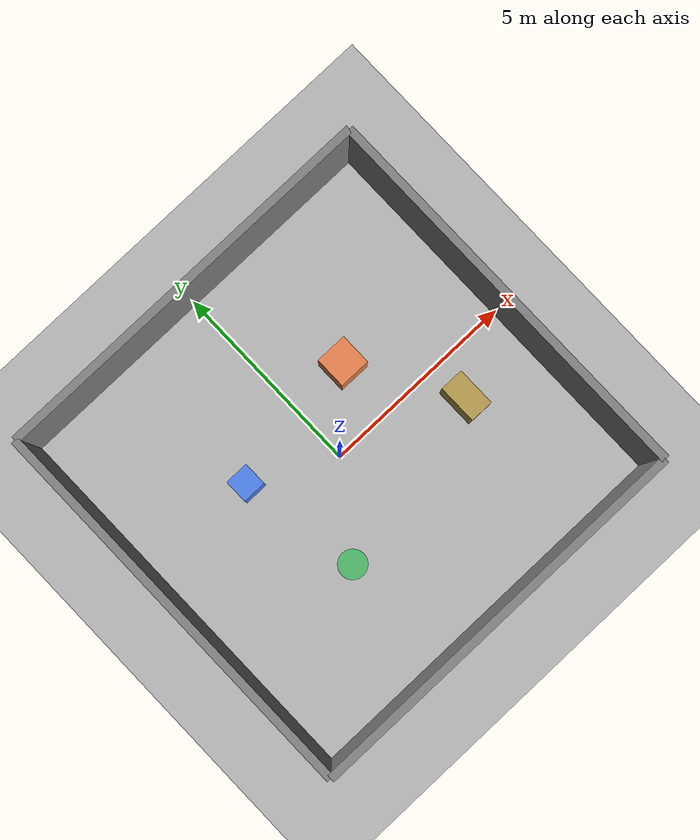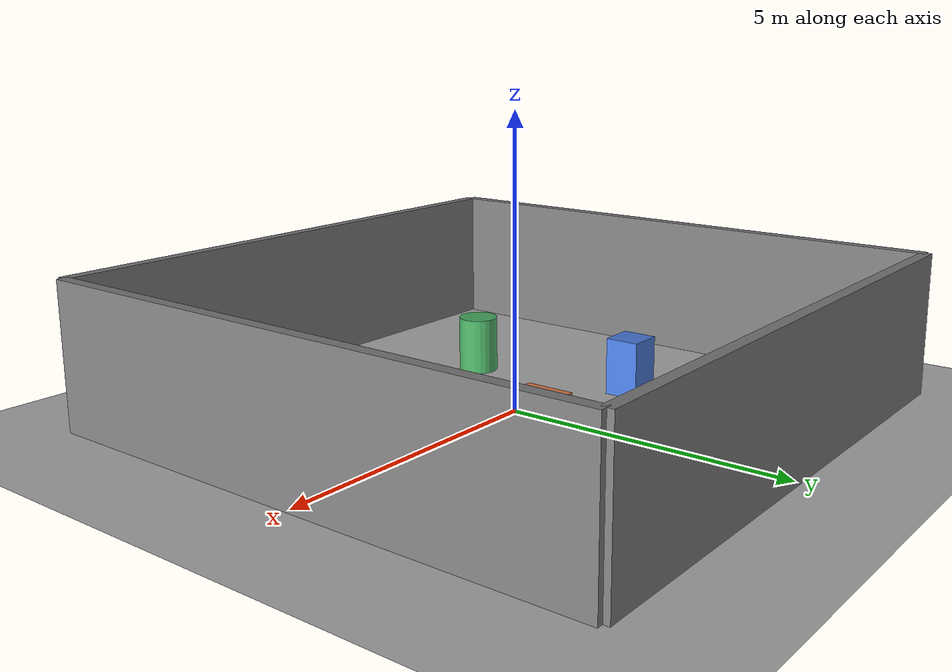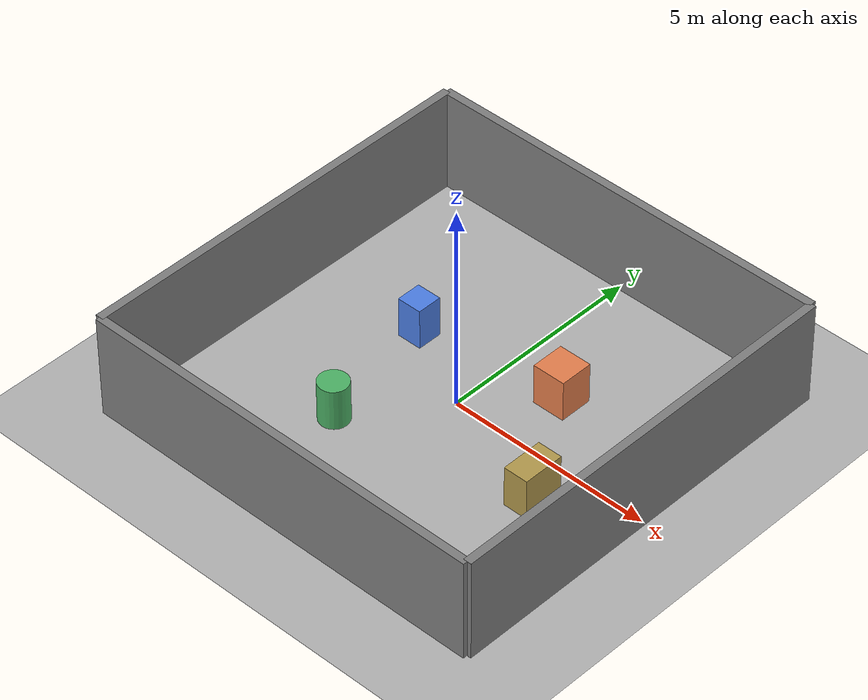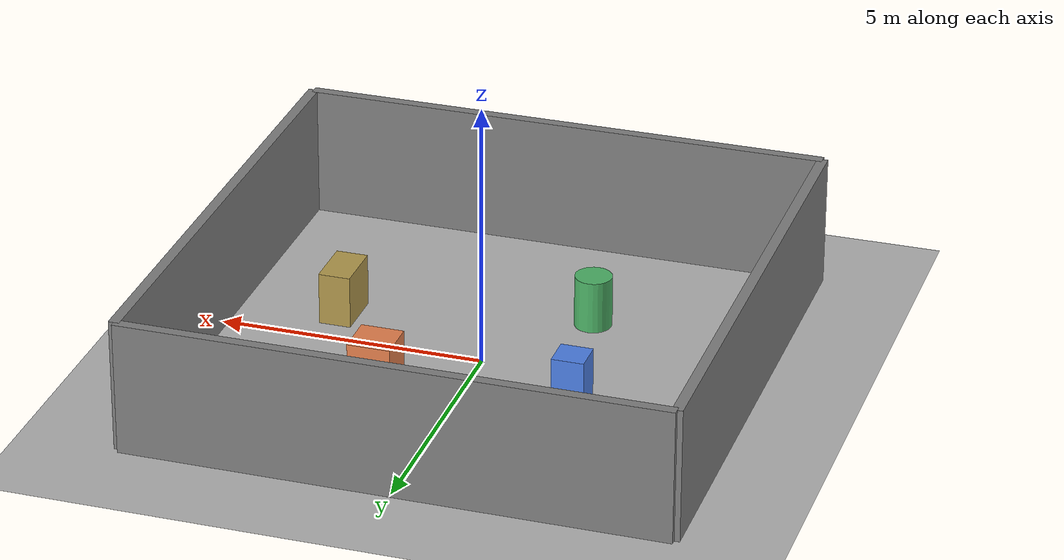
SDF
<?xml version="1.0"?>
<sdf version="1.6">
  <world name="room_world">
    <include><uri>model://sun</uri></include>
    <model name="ground_plane"><static>true</static>
      <link name="link">
        <collision name="collision"><geometry><plane><normal>0 0 1</normal><size>20 20</size></plane></geometry></collision>
        <visual name="visual"><geometry><plane><normal>0 0 1</normal><size>20 20</size></plane></geometry>
          <material><ambient>0.3 0.3 0.3 1</ambient><diffuse>0.7 0.7 0.7 1</diffuse><specular>0.01 0.01 0.01 1</specular></material></visual>
      </link>
    </model>
    <model name="wall_north"><static>true</static><pose>0 5 1.25 0 0 0</pose><link name="link"><collision name="collision"><geometry><box><size>10 0.2 2.5</size></box></geometry></collision><visual name="visual"><geometry><box><size>10 0.2 2.5</size></box></geometry><material><ambient>0.2 0.2 0.2 1</ambient><diffuse>0.5 0.5 0.5 1</diffuse></material></visual></link></model>
    <model name="wall_south"><static>true</static><pose>0 -5 1.25 0 0 0</pose><link name="link"><collision name="collision"><geometry><box><size>10 0.2 2.5</size></box></geometry></collision><visual name="visual"><geometry><box><size>10 0.2 2.5</size></box></geometry><material><ambient>0.2 0.2 0.2 1</ambient><diffuse>0.5 0.5 0.5 1</diffuse></material></visual></link></model>
    <model name="wall_east"><static>true</static><pose>5 0 1.25 0 0 0</pose><link name="link"><collision name="collision"><geometry><box><size>0.2 10 2.5</size></box></geometry></collision><visual name="visual"><geometry><box><size>0.2 10 2.5</size></box></geometry><material><ambient>0.2 0.2 0.2 1</ambient><diffuse>0.5 0.5 0.5 1</diffuse></material></visual></link></model>
    <model name="wall_west"><static>true</static><pose>-5 0 1.25 0 0 0</pose><link name="link"><collision name="collision"><geometry><box><size>0.2 10 2.5</size></box></geometry></collision><visual name="visual"><geometry><box><size>0.2 10 2.5</size></box></geometry><material><ambient>0.2 0.2 0.2 1</ambient><diffuse>0.5 0.5 0.5 1</diffuse></material></visual></link></model>
    <model name="obstacle_1"><static>true</static><pose>1.5 1.5 0.5 0 0 0</pose><link name="link"><collision name="collision"><geometry><box><size>0.8 0.8 1.0</size></box></geometry></collision><visual name="visual"><geometry><box><size>0.8 0.8 1.0</size></box></geometry><material><ambient>0.8 0.4 0.2 1</ambient><diffuse>0.9 0.5 0.3 1</diffuse></material></visual></link></model>
    <model name="obstacle_2"><static>true</static><pose>-2 1 0.5 0 0 0</pose><link name="link"><collision name="collision"><geometry><box><size>0.6 0.6 1.0</size></box></geometry></collision><visual name="visual"><geometry><box><size>0.6 0.6 1.0</size></box></geometry><material><ambient>0.2 0.4 0.8 1</ambient><diffuse>0.3 0.5 0.9 1</diffuse></material></visual></link></model>
    <model name="obstacle_3"><static>true</static><pose>-1.5 -2 0.5 0 0 0</pose><link name="link"><collision name="collision"><geometry><cylinder><radius>0.35</radius><length>1.0</length></cylinder></geometry></collision><visual name="visual"><geometry><cylinder><radius>0.35</radius><length>1.0</length></cylinder></geometry><material><ambient>0.2 0.6 0.3 1</ambient><diffuse>0.3 0.7 0.4 1</diffuse></material></visual></link></model>
    <model name="obstacle_4"><static>true</static><pose>3 -1 0.5 0 0 0</pose><link name="link"><collision name="collision"><geometry><box><size>0.6 1.0 1.0</size></box></geometry></collision><visual name="visual"><geometry><box><size>0.6 1.0 1.0</size></box></geometry><material><ambient>0.6 0.5 0.2 1</ambient><diffuse>0.7 0.6 0.3 1</diffuse></material></visual></link></model>
  </world>
</sdf>
